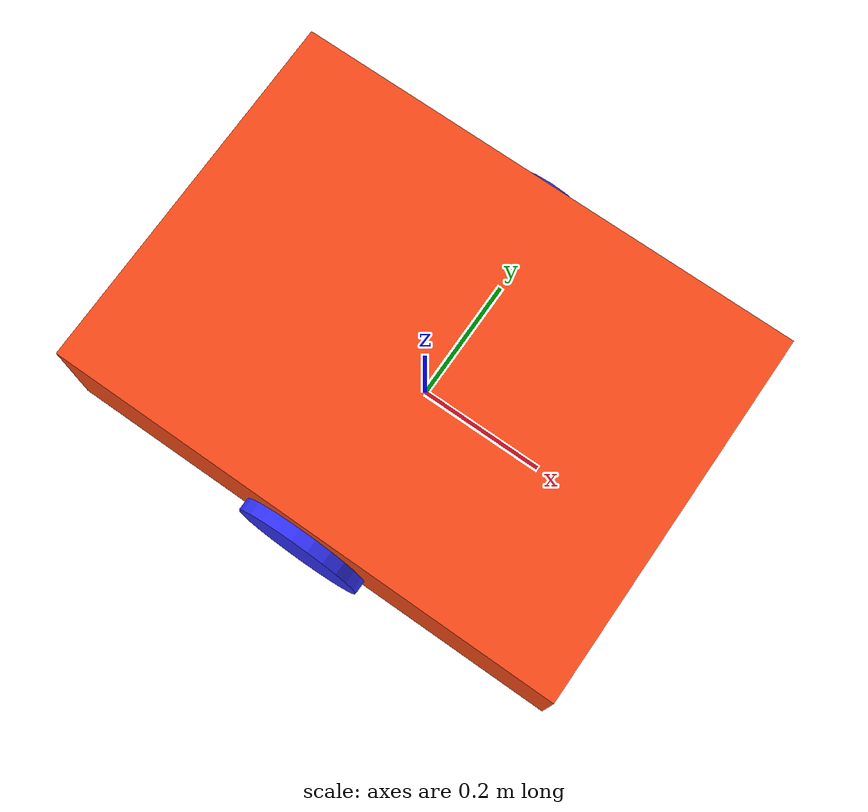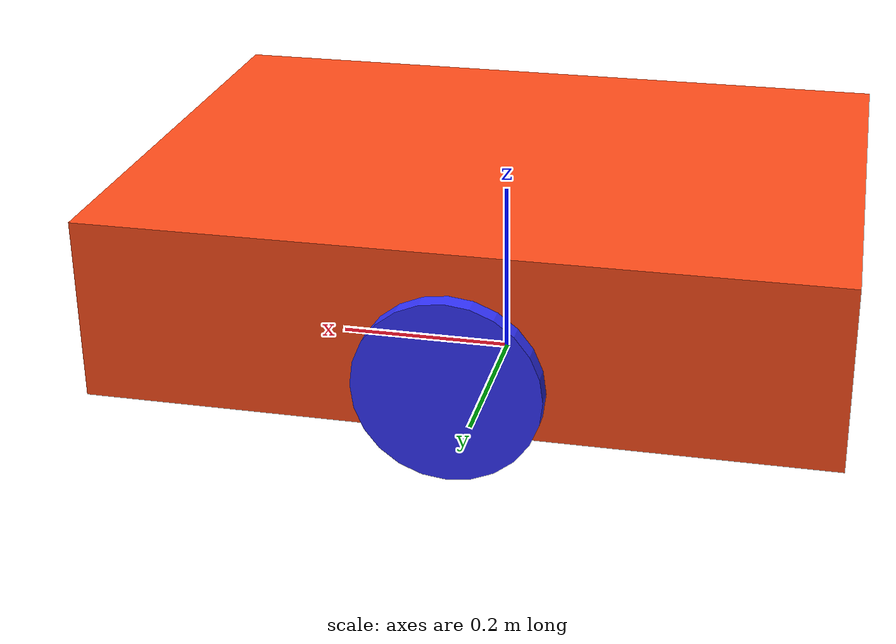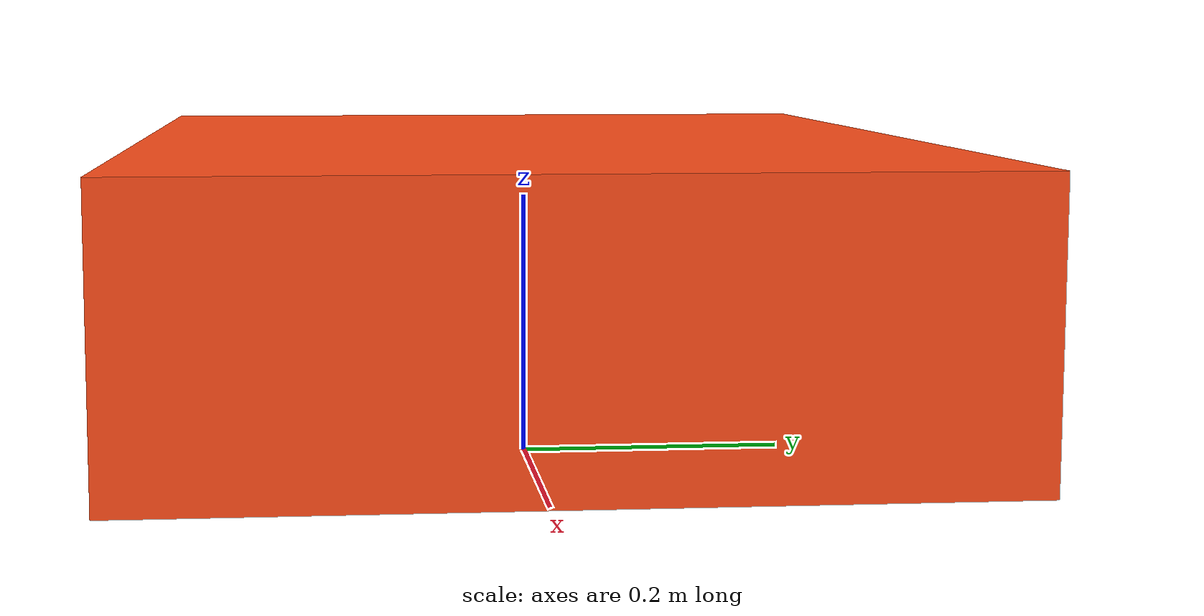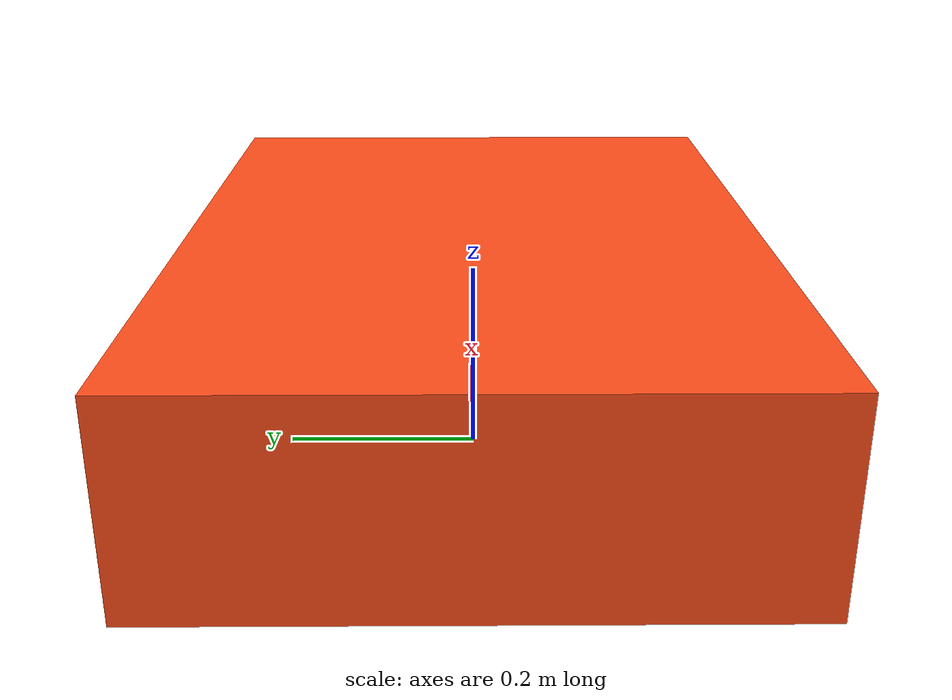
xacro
<?xml version="1.0"?>
<robot xmlns:xacro="http://www.ros.org/wiki/xacro" name="my_robot_core">

  <!-- inertial helper macros (needed by your lidar.xacro) -->
  <xacro:include filename="inertial_macros.xacro"/>

  <!-- PROPERTIES (match your ROS1 dimensions) -->
  <xacro:property name="chassis_length" value="0.80"/>
  <xacro:property name="chassis_width"  value="0.58"/>
  <xacro:property name="chassis_height" value="0.20"/>
  <xacro:property name="chassis_mass"   value="1.0"/>

  <xacro:property name="wheel_radius"    value="0.10"/>
  <xacro:property name="wheel_thickness" value="0.04"/>
  <xacro:property name="wheel_mass"      value="0.05"/>
  <xacro:property name="wheel_offset_y"  value="0.29"/>

  <!-- MATERIALS -->
  <material name="blue"><color rgba="0.2 0.2 1 1"/></material>
  <material name="orange"><color rgba="1 0.3 0.1 1"/></material>

  <link name="base_footprint"/>

  <link name="base_link"/>
  <!-- base_footprint -> base_link (so odom->base_footprint from controller is valid) -->
  <joint name="base_link_joint" type="fixed">
    <parent link="base_footprint"/>
    <child  link="base_link"/>
    <!-- If you want base_footprint on ground and base_link at axle height -->
    <origin xyz="0 0 ${wheel_radius}" rpy="0 0 0"/>
  </joint>

  <joint name="chassis_joint" type="fixed">
    <parent link="base_link"/>
    <child  link="chassis"/>
    <!-- keep your ROS1 offset -->
    <origin xyz="0 0 -0.01" rpy="0 0 0"/>
  </joint>

  <link name="chassis">
    <visual>
      <origin xyz="0 0 0.055" rpy="0 0 0"/>
      <geometry>
        <box size="${chassis_length} ${chassis_width} ${chassis_height}"/>
      </geometry>
      <material name="orange"/>
    </visual>

    <collision>
      <origin xyz="0.15 0 0.055" rpy="0 0 0"/>
      <geometry>
        <box size="0.30 0.16 0.11"/>
      </geometry>
    </collision>

    <inertial>
      <mass value="${chassis_mass}"/>
      <origin xyz="0.15 0 0.055" rpy="0 0 0"/>
      <inertia ixx="0.0011" ixy="0" ixz="0" iyy="0.0011" iyz="0" izz="0.0011"/>
    </inertial>
  </link>

  <!-- =========================
       WHEELS
       ========================= -->
  <joint name="left_wheel_joint" type="continuous">
    <parent link="base_link"/>
    <child  link="left_wheel"/>
    <origin xyz="0 ${wheel_offset_y} 0" rpy="-1.5708 0 0"/>
    <axis xyz="0 0 1"/>
  </joint>

  <link name="left_wheel">
    <visual>
      <geometry><cylinder radius="${wheel_radius}" length="${wheel_thickness}"/></geometry>
      <material name="blue"/>
    </visual>
    <collision>
      <geometry><cylinder radius="${wheel_radius}" length="${wheel_thickness}"/></geometry>
    </collision>
    <inertial>
      <mass value="${wheel_mass}"/>
      <origin xyz="0 0 0" rpy="0 0 0"/>
      <inertia ixx="0.00001" ixy="0" ixz="0" iyy="0.00001" iyz="0" izz="0.00001"/>
    </inertial>
  </link>

  <joint name="right_wheel_joint" type="continuous">
    <parent link="base_link"/>
    <child  link="right_wheel"/>
    <origin xyz="0 -${wheel_offset_y} 0" rpy="1.5708 0 0"/>
    <axis xyz="0 0 -1"/>
  </joint>

  <link name="right_wheel">
    <visual>
      <geometry><cylinder radius="${wheel_radius}" length="${wheel_thickness}"/></geometry>
      <material name="blue"/>
    </visual>
    <collision>
      <geometry><cylinder radius="${wheel_radius}" length="${wheel_thickness}"/></geometry>
    </collision>
    <inertial>
      <mass value="${wheel_mass}"/>
      <origin xyz="0 0 0" rpy="0 0 0"/>
      <inertia ixx="0.00001" ixy="0" ixz="0" iyy="0.00001" iyz="0" izz="0.00001"/>
    </inertial>
  </link>

</robot>
